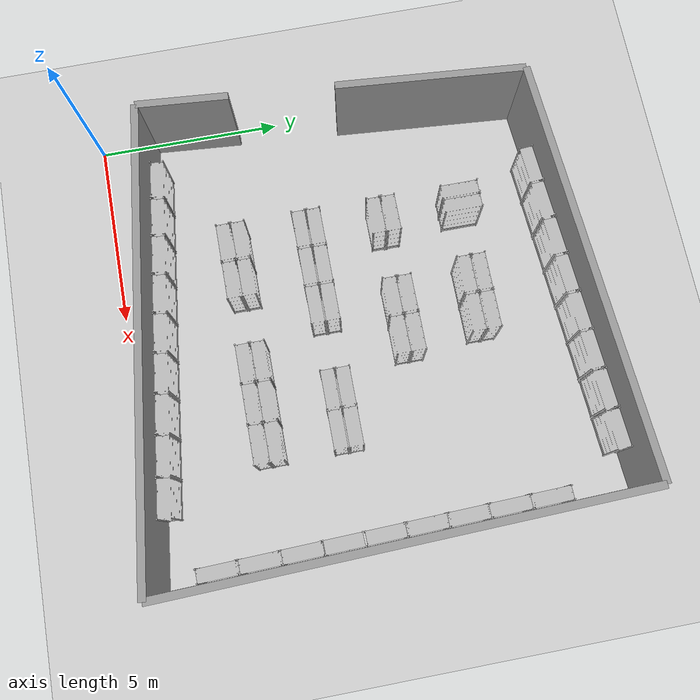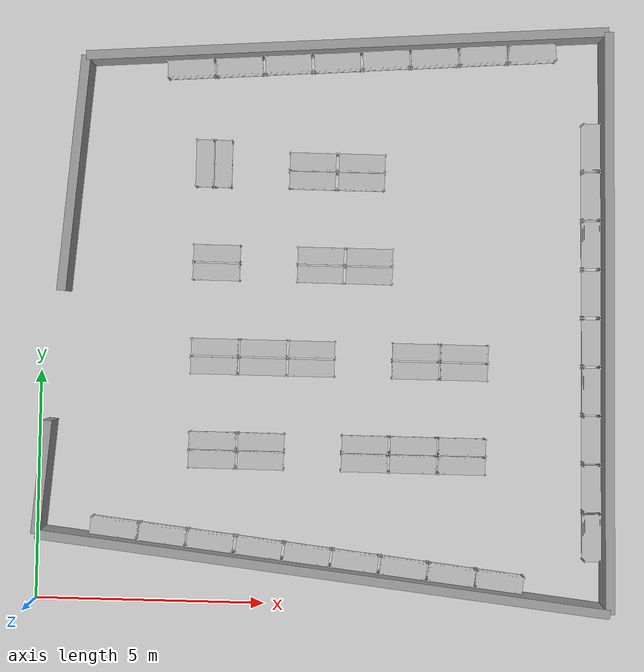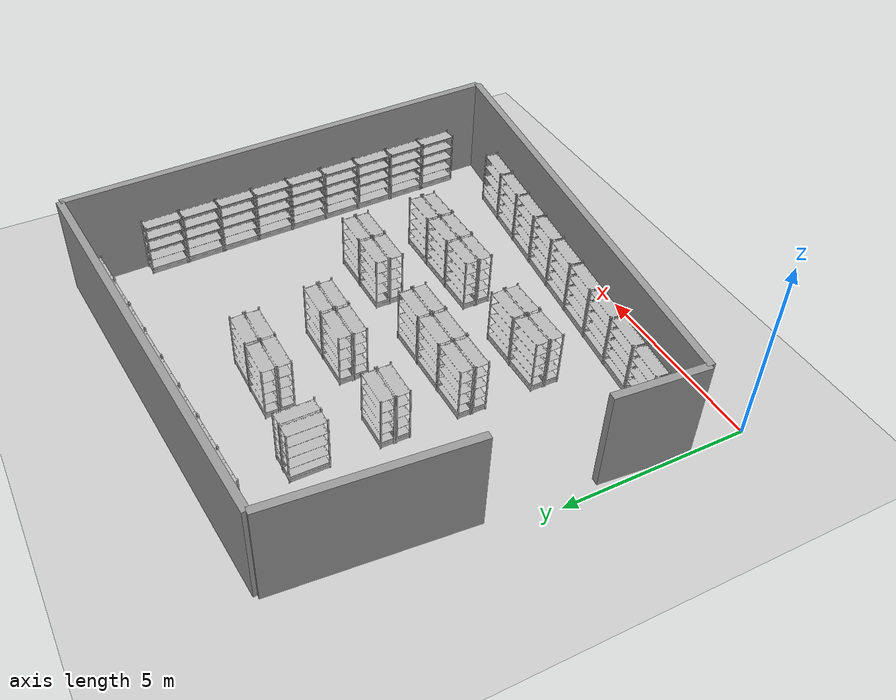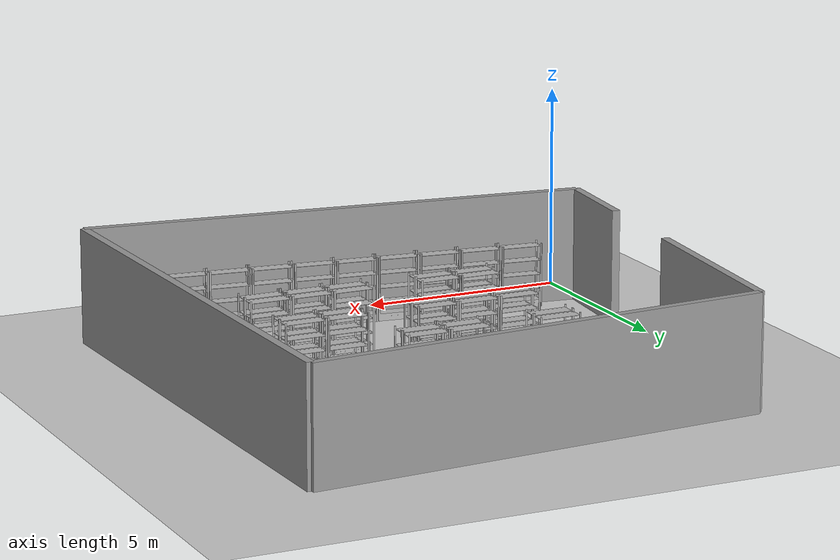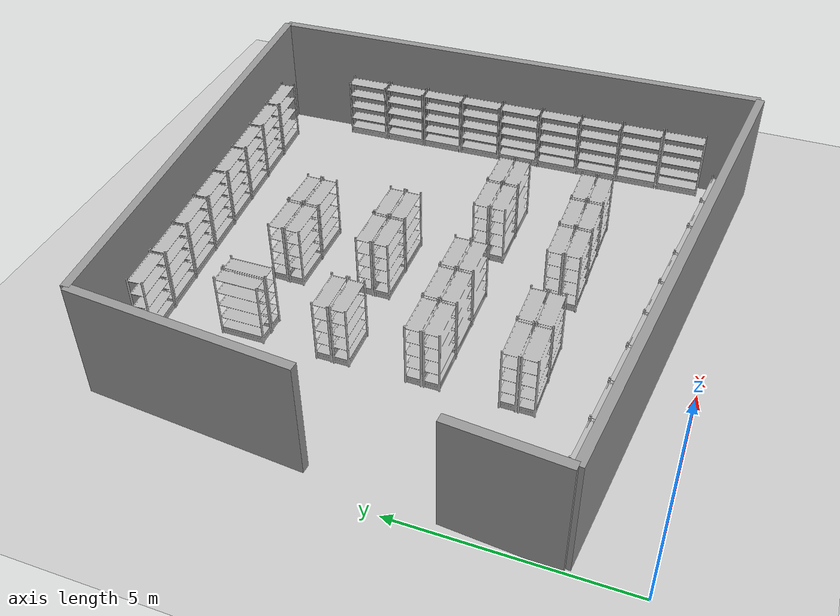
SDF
<sdf version="1.6">
  <world name="default">
    <light name="sun" type="directional">
      <cast_shadows>1</cast_shadows>
      <pose frame="">0 0 10 0 -0 0</pose>
      <diffuse>0.8 0.8 0.8 1</diffuse>
      <specular>0.2 0.2 0.2 1</specular>
      <attenuation>
        <range>1000</range>
        <constant>0.9</constant>
        <linear>0.01</linear>
        <quadratic>0.001</quadratic>
      </attenuation>
      <direction>-0.5 0.1 -0.9</direction>
    </light>
    <model name="ground_plane">
      <static>1</static>
      <link name="link">
        <collision name="collision">
          <geometry>
            <plane>
              <normal>0 0 1</normal>
              <size>100 100</size>
            </plane>
          </geometry>
          <surface>
            <contact>
              <collide_bitmask>65535</collide_bitmask>
              <ode />
            </contact>
            <friction>
              <ode>
                <mu>1000</mu>
                <mu2>1000</mu2>
              </ode>
              <torsional>
                <ode />
              </torsional>
            </friction>
            <bounce />
          </surface>
          <max_contacts>10</max_contacts>
        </collision>
        <visual name="visual">
          <cast_shadows>0</cast_shadows>
          <geometry>
            <plane>
              <normal>0 0 1</normal>
              <size>100 100</size>
            </plane>
          </geometry>
          <material>
            <script>
              <uri>file://media/materials/scripts/gazebo.material</uri>
              <name>Gazebo/Grey</name>
            </script>
          </material>
        </visual>
        <self_collide>0</self_collide>
        <enable_wind>0</enable_wind>
        <kinematic>0</kinematic>
      </link>
    </model>
    <gravity>0 0 -9.8</gravity>
    <magnetic_field>6e-06 2.3e-05 -4.2e-05</magnetic_field>
    <atmosphere type="adiabatic" />
    <physics name="default_physics" default="0" type="ode">
      <max_step_size>0.001</max_step_size>
      <real_time_factor>1</real_time_factor>
      <real_time_update_rate>1000</real_time_update_rate>
    </physics>
    <scene>
      <ambient>0.4 0.4 0.4 1</ambient>
      <background>0.7 0.7 0.7 1</background>
      <shadows>1</shadows>
    </scene>
    <audio>
      <device>default</device>
    </audio>
    <wind />
    <spherical_coordinates>
      <surface_model>EARTH_WGS84</surface_model>
      <latitude_deg>0</latitude_deg>
      <longitude_deg>0</longitude_deg>
      <elevation>0</elevation>
      <heading_deg>0</heading_deg>
    </spherical_coordinates>
    <gui fullscreen="0">
      <camera name="user_camera">
        <pose frame="">5.5458 -17.3868 19.7357 0 0.841797 1.67218</pose>
        <view_controller>orbit</view_controller>
        <projection_type>perspective</projection_type>
      </camera>
    </gui>
    <plugin name="ActorPosesPlugin" filename="libActorPosesPlugin.so" />
    <model name="store_shelf_moduled_0">
      <link name="link">
        <collision name="collision">
          <geometry>
            <mesh>
              <uri>model://store_shelf_moduled/meshes/store_shelf_moduled.dae</uri>
            </mesh>
          </geometry>
        </collision>
        <visual name="visual">
          <geometry>
            <mesh>
              <uri>model://store_shelf_moduled/meshes/store_shelf_moduled.dae</uri>
            </mesh>
          </geometry>
        </visual>
        <inertial>
          <mass>1000</mass>
          <inertia>
            <ixx>840083</ixx>
            <ixy>0</ixy>
            <ixz>0</ixz>
            <iyy>475500</iyy>
            <iyz>0</iyz>
            <izz>1.30208e+06</izz>
          </inertia>
        </inertial>
        <self_collide>0</self_collide>
        <enable_wind>0</enable_wind>
        <kinematic>0</kinematic>
      </link>
      <static>1</static>
      <pose frame="">1.161334 1.479356 0 0 0 -0.1135866</pose>
    </model>
    <model name="store_shelf_moduled_1">
      <link name="link">
        <collision name="collision">
          <geometry>
            <mesh>
              <uri>model://store_shelf_moduled/meshes/store_shelf_moduled.dae</uri>
            </mesh>
          </geometry>
        </collision>
        <visual name="visual">
          <geometry>
            <mesh>
              <uri>model://store_shelf_moduled/meshes/store_shelf_moduled.dae</uri>
            </mesh>
          </geometry>
        </visual>
        <inertial>
          <mass>1000</mass>
          <inertia>
            <ixx>840083</ixx>
            <ixy>0</ixy>
            <ixz>0</ixz>
            <iyy>475500</iyy>
            <iyz>0</iyz>
            <izz>1.30208e+06</izz>
          </inertia>
        </inertial>
        <self_collide>0</self_collide>
        <enable_wind>0</enable_wind>
        <kinematic>0</kinematic>
      </link>
      <static>1</static>
      <pose frame="">2.211334 1.359356 0 0 0 -0.1135866</pose>
    </model>
    <model name="store_shelf_moduled_2">
      <link name="link">
        <collision name="collision">
          <geometry>
            <mesh>
              <uri>model://store_shelf_moduled/meshes/store_shelf_moduled.dae</uri>
            </mesh>
          </geometry>
        </collision>
        <visual name="visual">
          <geometry>
            <mesh>
              <uri>model://store_shelf_moduled/meshes/store_shelf_moduled.dae</uri>
            </mesh>
          </geometry>
        </visual>
        <inertial>
          <mass>1000</mass>
          <inertia>
            <ixx>840083</ixx>
            <ixy>0</ixy>
            <ixz>0</ixz>
            <iyy>475500</iyy>
            <iyz>0</iyz>
            <izz>1.30208e+06</izz>
          </inertia>
        </inertial>
        <self_collide>0</self_collide>
        <enable_wind>0</enable_wind>
        <kinematic>0</kinematic>
      </link>
      <static>1</static>
      <pose frame="">3.261334 1.239356 0 0 0 -0.1135866</pose>
    </model>
    <model name="store_shelf_moduled_3">
      <link name="link">
        <collision name="collision">
          <geometry>
            <mesh>
              <uri>model://store_shelf_moduled/meshes/store_shelf_moduled.dae</uri>
            </mesh>
          </geometry>
        </collision>
        <visual name="visual">
          <geometry>
            <mesh>
              <uri>model://store_shelf_moduled/meshes/store_shelf_moduled.dae</uri>
            </mesh>
          </geometry>
        </visual>
        <inertial>
          <mass>1000</mass>
          <inertia>
            <ixx>840083</ixx>
            <ixy>0</ixy>
            <ixz>0</ixz>
            <iyy>475500</iyy>
            <iyz>0</iyz>
            <izz>1.30208e+06</izz>
          </inertia>
        </inertial>
        <self_collide>0</self_collide>
        <enable_wind>0</enable_wind>
        <kinematic>0</kinematic>
      </link>
      <static>1</static>
      <pose frame="">4.321334 1.119356 0 0 0 -0.1135866</pose>
    </model>
    <model name="store_shelf_moduled_4">
      <link name="link">
        <collision name="collision">
          <geometry>
            <mesh>
              <uri>model://store_shelf_moduled/meshes/store_shelf_moduled.dae</uri>
            </mesh>
          </geometry>
        </collision>
        <visual name="visual">
          <geometry>
            <mesh>
              <uri>model://store_shelf_moduled/meshes/store_shelf_moduled.dae</uri>
            </mesh>
          </geometry>
        </visual>
        <inertial>
          <mass>1000</mass>
          <inertia>
            <ixx>840083</ixx>
            <ixy>0</ixy>
            <ixz>0</ixz>
            <iyy>475500</iyy>
            <iyz>0</iyz>
            <izz>1.30208e+06</izz>
          </inertia>
        </inertial>
        <self_collide>0</self_collide>
        <enable_wind>0</enable_wind>
        <kinematic>0</kinematic>
      </link>
      <static>1</static>
      <pose frame="">5.371334 0.9993556 0 0 0 -0.1135866</pose>
    </model>
    <model name="store_shelf_moduled_5">
      <link name="link">
        <collision name="collision">
          <geometry>
            <mesh>
              <uri>model://store_shelf_moduled/meshes/store_shelf_moduled.dae</uri>
            </mesh>
          </geometry>
        </collision>
        <visual name="visual">
          <geometry>
            <mesh>
              <uri>model://store_shelf_moduled/meshes/store_shelf_moduled.dae</uri>
            </mesh>
          </geometry>
        </visual>
        <inertial>
          <mass>1000</mass>
          <inertia>
            <ixx>840083</ixx>
            <ixy>0</ixy>
            <ixz>0</ixz>
            <iyy>475500</iyy>
            <iyz>0</iyz>
            <izz>1.30208e+06</izz>
          </inertia>
        </inertial>
        <self_collide>0</self_collide>
        <enable_wind>0</enable_wind>
        <kinematic>0</kinematic>
      </link>
      <static>1</static>
      <pose frame="">6.421334 0.8793556 0 0 0 -0.1135866</pose>
    </model>
    <model name="store_shelf_moduled_6">
      <link name="link">
        <collision name="collision">
          <geometry>
            <mesh>
              <uri>model://store_shelf_moduled/meshes/store_shelf_moduled.dae</uri>
            </mesh>
          </geometry>
        </collision>
        <visual name="visual">
          <geometry>
            <mesh>
              <uri>model://store_shelf_moduled/meshes/store_shelf_moduled.dae</uri>
            </mesh>
          </geometry>
        </visual>
        <inertial>
          <mass>1000</mass>
          <inertia>
            <ixx>840083</ixx>
            <ixy>0</ixy>
            <ixz>0</ixz>
            <iyy>475500</iyy>
            <iyz>0</iyz>
            <izz>1.30208e+06</izz>
          </inertia>
        </inertial>
        <self_collide>0</self_collide>
        <enable_wind>0</enable_wind>
        <kinematic>0</kinematic>
      </link>
      <static>1</static>
      <pose frame="">7.481334 0.7593556 0 0 0 -0.1135866</pose>
    </model>
    <model name="store_shelf_moduled_7">
      <link name="link">
        <collision name="collision">
          <geometry>
            <mesh>
              <uri>model://store_shelf_moduled/meshes/store_shelf_moduled.dae</uri>
            </mesh>
          </geometry>
        </collision>
        <visual name="visual">
          <geometry>
            <mesh>
              <uri>model://store_shelf_moduled/meshes/store_shelf_moduled.dae</uri>
            </mesh>
          </geometry>
        </visual>
        <inertial>
          <mass>1000</mass>
          <inertia>
            <ixx>840083</ixx>
            <ixy>0</ixy>
            <ixz>0</ixz>
            <iyy>475500</iyy>
            <iyz>0</iyz>
            <izz>1.30208e+06</izz>
          </inertia>
        </inertial>
        <self_collide>0</self_collide>
        <enable_wind>0</enable_wind>
        <kinematic>0</kinematic>
      </link>
      <static>1</static>
      <pose frame="">8.531334 0.6393556 0 0 0 -0.1135866</pose>
    </model>
    <model name="store_shelf_moduled_8">
      <link name="link">
        <collision name="collision">
          <geometry>
            <mesh>
              <uri>model://store_shelf_moduled/meshes/store_shelf_moduled.dae</uri>
            </mesh>
          </geometry>
        </collision>
        <visual name="visual">
          <geometry>
            <mesh>
              <uri>model://store_shelf_moduled/meshes/store_shelf_moduled.dae</uri>
            </mesh>
          </geometry>
        </visual>
        <inertial>
          <mass>1000</mass>
          <inertia>
            <ixx>840083</ixx>
            <ixy>0</ixy>
            <ixz>0</ixz>
            <iyy>475500</iyy>
            <iyz>0</iyz>
            <izz>1.30208e+06</izz>
          </inertia>
        </inertial>
        <self_collide>0</self_collide>
        <enable_wind>0</enable_wind>
        <kinematic>0</kinematic>
      </link>
      <static>1</static>
      <pose frame="">9.581334 0.5193556 0 0 0 -0.1135866</pose>
    </model>
    <model name="store_shelf_moduled_9">
      <link name="link">
        <collision name="collision">
          <geometry>
            <mesh>
              <uri>model://store_shelf_moduled/meshes/store_shelf_moduled.dae</uri>
            </mesh>
          </geometry>
        </collision>
        <visual name="visual">
          <geometry>
            <mesh>
              <uri>model://store_shelf_moduled/meshes/store_shelf_moduled.dae</uri>
            </mesh>
          </geometry>
        </visual>
        <inertial>
          <mass>1000</mass>
          <inertia>
            <ixx>840083</ixx>
            <ixy>0</ixy>
            <ixz>0</ixz>
            <iyy>475500</iyy>
            <iyz>0</iyz>
            <izz>1.30208e+06</izz>
          </inertia>
        </inertial>
        <self_collide>0</self_collide>
        <enable_wind>0</enable_wind>
        <kinematic>0</kinematic>
      </link>
      <static>1</static>
      <pose frame="">12.33004 1.147197 0 0 0 1.598834</pose>
    </model>
    <model name="store_shelf_moduled_10">
      <link name="link">
        <collision name="collision">
          <geometry>
            <mesh>
              <uri>model://store_shelf_moduled/meshes/store_shelf_moduled.dae</uri>
            </mesh>
          </geometry>
        </collision>
        <visual name="visual">
          <geometry>
            <mesh>
              <uri>model://store_shelf_moduled/meshes/store_shelf_moduled.dae</uri>
            </mesh>
          </geometry>
        </visual>
        <inertial>
          <mass>1000</mass>
          <inertia>
            <ixx>840083</ixx>
            <ixy>0</ixy>
            <ixz>0</ixz>
            <iyy>475500</iyy>
            <iyz>0</iyz>
            <izz>1.30208e+06</izz>
          </inertia>
        </inertial>
        <self_collide>0</self_collide>
        <enable_wind>0</enable_wind>
        <kinematic>0</kinematic>
      </link>
      <static>1</static>
      <pose frame="">12.30004 2.207197 0 0 0 1.598834</pose>
    </model>
    <model name="store_shelf_moduled_11">
      <link name="link">
        <collision name="collision">
          <geometry>
            <mesh>
              <uri>model://store_shelf_moduled/meshes/store_shelf_moduled.dae</uri>
            </mesh>
          </geometry>
        </collision>
        <visual name="visual">
          <geometry>
            <mesh>
              <uri>model://store_shelf_moduled/meshes/store_shelf_moduled.dae</uri>
            </mesh>
          </geometry>
        </visual>
        <inertial>
          <mass>1000</mass>
          <inertia>
            <ixx>840083</ixx>
            <ixy>0</ixy>
            <ixz>0</ixz>
            <iyy>475500</iyy>
            <iyz>0</iyz>
            <izz>1.30208e+06</izz>
          </inertia>
        </inertial>
        <self_collide>0</self_collide>
        <enable_wind>0</enable_wind>
        <kinematic>0</kinematic>
      </link>
      <static>1</static>
      <pose frame="">12.27004 3.267197 0 0 0 1.598834</pose>
    </model>
    <model name="store_shelf_moduled_12">
      <link name="link">
        <collision name="collision">
          <geometry>
            <mesh>
              <uri>model://store_shelf_moduled/meshes/store_shelf_moduled.dae</uri>
            </mesh>
          </geometry>
        </collision>
        <visual name="visual">
          <geometry>
            <mesh>
              <uri>model://store_shelf_moduled/meshes/store_shelf_moduled.dae</uri>
            </mesh>
          </geometry>
        </visual>
        <inertial>
          <mass>1000</mass>
          <inertia>
            <ixx>840083</ixx>
            <ixy>0</ixy>
            <ixz>0</ixz>
            <iyy>475500</iyy>
            <iyz>0</iyz>
            <izz>1.30208e+06</izz>
          </inertia>
        </inertial>
        <self_collide>0</self_collide>
        <enable_wind>0</enable_wind>
        <kinematic>0</kinematic>
      </link>
      <static>1</static>
      <pose frame="">12.24004 4.327197 0 0 0 1.598834</pose>
    </model>
    <model name="store_shelf_moduled_13">
      <link name="link">
        <collision name="collision">
          <geometry>
            <mesh>
              <uri>model://store_shelf_moduled/meshes/store_shelf_moduled.dae</uri>
            </mesh>
          </geometry>
        </collision>
        <visual name="visual">
          <geometry>
            <mesh>
              <uri>model://store_shelf_moduled/meshes/store_shelf_moduled.dae</uri>
            </mesh>
          </geometry>
        </visual>
        <inertial>
          <mass>1000</mass>
          <inertia>
            <ixx>840083</ixx>
            <ixy>0</ixy>
            <ixz>0</ixz>
            <iyy>475500</iyy>
            <iyz>0</iyz>
            <izz>1.30208e+06</izz>
          </inertia>
        </inertial>
        <self_collide>0</self_collide>
        <enable_wind>0</enable_wind>
        <kinematic>0</kinematic>
      </link>
      <static>1</static>
      <pose frame="">12.21004 5.387197 0 0 0 1.598834</pose>
    </model>
    <model name="store_shelf_moduled_14">
      <link name="link">
        <collision name="collision">
          <geometry>
            <mesh>
              <uri>model://store_shelf_moduled/meshes/store_shelf_moduled.dae</uri>
            </mesh>
          </geometry>
        </collision>
        <visual name="visual">
          <geometry>
            <mesh>
              <uri>model://store_shelf_moduled/meshes/store_shelf_moduled.dae</uri>
            </mesh>
          </geometry>
        </visual>
        <inertial>
          <mass>1000</mass>
          <inertia>
            <ixx>840083</ixx>
            <ixy>0</ixy>
            <ixz>0</ixz>
            <iyy>475500</iyy>
            <iyz>0</iyz>
            <izz>1.30208e+06</izz>
          </inertia>
        </inertial>
        <self_collide>0</self_collide>
        <enable_wind>0</enable_wind>
        <kinematic>0</kinematic>
      </link>
      <static>1</static>
      <pose frame="">12.18004 6.447196 0 0 0 1.598834</pose>
    </model>
    <model name="store_shelf_moduled_15">
      <link name="link">
        <collision name="collision">
          <geometry>
            <mesh>
              <uri>model://store_shelf_moduled/meshes/store_shelf_moduled.dae</uri>
            </mesh>
          </geometry>
        </collision>
        <visual name="visual">
          <geometry>
            <mesh>
              <uri>model://store_shelf_moduled/meshes/store_shelf_moduled.dae</uri>
            </mesh>
          </geometry>
        </visual>
        <inertial>
          <mass>1000</mass>
          <inertia>
            <ixx>840083</ixx>
            <ixy>0</ixy>
            <ixz>0</ixz>
            <iyy>475500</iyy>
            <iyz>0</iyz>
            <izz>1.30208e+06</izz>
          </inertia>
        </inertial>
        <self_collide>0</self_collide>
        <enable_wind>0</enable_wind>
        <kinematic>0</kinematic>
      </link>
      <static>1</static>
      <pose frame="">12.15004 7.507196 0 0 0 1.598834</pose>
    </model>
    <model name="store_shelf_moduled_16">
      <link name="link">
        <collision name="collision">
          <geometry>
            <mesh>
              <uri>model://store_shelf_moduled/meshes/store_shelf_moduled.dae</uri>
            </mesh>
          </geometry>
        </collision>
        <visual name="visual">
          <geometry>
            <mesh>
              <uri>model://store_shelf_moduled/meshes/store_shelf_moduled.dae</uri>
            </mesh>
          </geometry>
        </visual>
        <inertial>
          <mass>1000</mass>
          <inertia>
            <ixx>840083</ixx>
            <ixy>0</ixy>
            <ixz>0</ixz>
            <iyy>475500</iyy>
            <iyz>0</iyz>
            <izz>1.30208e+06</izz>
          </inertia>
        </inertial>
        <self_collide>0</self_collide>
        <enable_wind>0</enable_wind>
        <kinematic>0</kinematic>
      </link>
      <static>1</static>
      <pose frame="">12.12004 8.567197 0 0 0 1.598834</pose>
    </model>
    <model name="store_shelf_moduled_17">
      <link name="link">
        <collision name="collision">
          <geometry>
            <mesh>
              <uri>model://store_shelf_moduled/meshes/store_shelf_moduled.dae</uri>
            </mesh>
          </geometry>
        </collision>
        <visual name="visual">
          <geometry>
            <mesh>
              <uri>model://store_shelf_moduled/meshes/store_shelf_moduled.dae</uri>
            </mesh>
          </geometry>
        </visual>
        <inertial>
          <mass>1000</mass>
          <inertia>
            <ixx>840083</ixx>
            <ixy>0</ixy>
            <ixz>0</ixz>
            <iyy>475500</iyy>
            <iyz>0</iyz>
            <izz>1.30208e+06</izz>
          </inertia>
        </inertial>
        <self_collide>0</self_collide>
        <enable_wind>0</enable_wind>
        <kinematic>0</kinematic>
      </link>
      <static>1</static>
      <pose frame="">12.09004 9.627196 0 0 0 1.598834</pose>
    </model>
    <model name="store_shelf_moduled_18">
      <link name="link">
        <collision name="collision">
          <geometry>
            <mesh>
              <uri>model://store_shelf_moduled/meshes/store_shelf_moduled.dae</uri>
            </mesh>
          </geometry>
        </collision>
        <visual name="visual">
          <geometry>
            <mesh>
              <uri>model://store_shelf_moduled/meshes/store_shelf_moduled.dae</uri>
            </mesh>
          </geometry>
        </visual>
        <inertial>
          <mass>1000</mass>
          <inertia>
            <ixx>840083</ixx>
            <ixy>0</ixy>
            <ixz>0</ixz>
            <iyy>475500</iyy>
            <iyz>0</iyz>
            <izz>1.30208e+06</izz>
          </inertia>
        </inertial>
        <self_collide>0</self_collide>
        <enable_wind>0</enable_wind>
        <kinematic>0</kinematic>
      </link>
      <static>1</static>
      <pose frame="">11.05705 12.40025 0 0 0 -3.071048</pose>
    </model>
    <model name="store_shelf_moduled_19">
      <link name="link">
        <collision name="collision">
          <geometry>
            <mesh>
              <uri>model://store_shelf_moduled/meshes/store_shelf_moduled.dae</uri>
            </mesh>
          </geometry>
        </collision>
        <visual name="visual">
          <geometry>
            <mesh>
              <uri>model://store_shelf_moduled/meshes/store_shelf_moduled.dae</uri>
            </mesh>
          </geometry>
        </visual>
        <inertial>
          <mass>1000</mass>
          <inertia>
            <ixx>840083</ixx>
            <ixy>0</ixy>
            <ixz>0</ixz>
            <iyy>475500</iyy>
            <iyz>0</iyz>
            <izz>1.30208e+06</izz>
          </inertia>
        </inertial>
        <self_collide>0</self_collide>
        <enable_wind>0</enable_wind>
        <kinematic>0</kinematic>
      </link>
      <static>1</static>
      <pose frame="">9.997048 12.33025 0 0 0 -3.071048</pose>
    </model>
    <model name="store_shelf_moduled_20">
      <link name="link">
        <collision name="collision">
          <geometry>
            <mesh>
              <uri>model://store_shelf_moduled/meshes/store_shelf_moduled.dae</uri>
            </mesh>
          </geometry>
        </collision>
        <visual name="visual">
          <geometry>
            <mesh>
              <uri>model://store_shelf_moduled/meshes/store_shelf_moduled.dae</uri>
            </mesh>
          </geometry>
        </visual>
        <inertial>
          <mass>1000</mass>
          <inertia>
            <ixx>840083</ixx>
            <ixy>0</ixy>
            <ixz>0</ixz>
            <iyy>475500</iyy>
            <iyz>0</iyz>
            <izz>1.30208e+06</izz>
          </inertia>
        </inertial>
        <self_collide>0</self_collide>
        <enable_wind>0</enable_wind>
        <kinematic>0</kinematic>
      </link>
      <static>1</static>
      <pose frame="">8.937048 12.25025 0 0 0 -3.071048</pose>
    </model>
    <model name="store_shelf_moduled_21">
      <link name="link">
        <collision name="collision">
          <geometry>
            <mesh>
              <uri>model://store_shelf_moduled/meshes/store_shelf_moduled.dae</uri>
            </mesh>
          </geometry>
        </collision>
        <visual name="visual">
          <geometry>
            <mesh>
              <uri>model://store_shelf_moduled/meshes/store_shelf_moduled.dae</uri>
            </mesh>
          </geometry>
        </visual>
        <inertial>
          <mass>1000</mass>
          <inertia>
            <ixx>840083</ixx>
            <ixy>0</ixy>
            <ixz>0</ixz>
            <iyy>475500</iyy>
            <iyz>0</iyz>
            <izz>1.30208e+06</izz>
          </inertia>
        </inertial>
        <self_collide>0</self_collide>
        <enable_wind>0</enable_wind>
        <kinematic>0</kinematic>
      </link>
      <static>1</static>
      <pose frame="">7.887048 12.18025 0 0 0 -3.071048</pose>
    </model>
    <model name="store_shelf_moduled_22">
      <link name="link">
        <collision name="collision">
          <geometry>
            <mesh>
              <uri>model://store_shelf_moduled/meshes/store_shelf_moduled.dae</uri>
            </mesh>
          </geometry>
        </collision>
        <visual name="visual">
          <geometry>
            <mesh>
              <uri>model://store_shelf_moduled/meshes/store_shelf_moduled.dae</uri>
            </mesh>
          </geometry>
        </visual>
        <inertial>
          <mass>1000</mass>
          <inertia>
            <ixx>840083</ixx>
            <ixy>0</ixy>
            <ixz>0</ixz>
            <iyy>475500</iyy>
            <iyz>0</iyz>
            <izz>1.30208e+06</izz>
          </inertia>
        </inertial>
        <self_collide>0</self_collide>
        <enable_wind>0</enable_wind>
        <kinematic>0</kinematic>
      </link>
      <static>1</static>
      <pose frame="">6.827048 12.10025 0 0 0 -3.071048</pose>
    </model>
    <model name="store_shelf_moduled_23">
      <link name="link">
        <collision name="collision">
          <geometry>
            <mesh>
              <uri>model://store_shelf_moduled/meshes/store_shelf_moduled.dae</uri>
            </mesh>
          </geometry>
        </collision>
        <visual name="visual">
          <geometry>
            <mesh>
              <uri>model://store_shelf_moduled/meshes/store_shelf_moduled.dae</uri>
            </mesh>
          </geometry>
        </visual>
        <inertial>
          <mass>1000</mass>
          <inertia>
            <ixx>840083</ixx>
            <ixy>0</ixy>
            <ixz>0</ixz>
            <iyy>475500</iyy>
            <iyz>0</iyz>
            <izz>1.30208e+06</izz>
          </inertia>
        </inertial>
        <self_collide>0</self_collide>
        <enable_wind>0</enable_wind>
        <kinematic>0</kinematic>
      </link>
      <static>1</static>
      <pose frame="">5.767048 12.03025 0 0 0 -3.071048</pose>
    </model>
    <model name="store_shelf_moduled_24">
      <link name="link">
        <collision name="collision">
          <geometry>
            <mesh>
              <uri>model://store_shelf_moduled/meshes/store_shelf_moduled.dae</uri>
            </mesh>
          </geometry>
        </collision>
        <visual name="visual">
          <geometry>
            <mesh>
              <uri>model://store_shelf_moduled/meshes/store_shelf_moduled.dae</uri>
            </mesh>
          </geometry>
        </visual>
        <inertial>
          <mass>1000</mass>
          <inertia>
            <ixx>840083</ixx>
            <ixy>0</ixy>
            <ixz>0</ixz>
            <iyy>475500</iyy>
            <iyz>0</iyz>
            <izz>1.30208e+06</izz>
          </inertia>
        </inertial>
        <self_collide>0</self_collide>
        <enable_wind>0</enable_wind>
        <kinematic>0</kinematic>
      </link>
      <static>1</static>
      <pose frame="">4.707048 11.95025 0 0 0 -3.071048</pose>
    </model>
    <model name="store_shelf_moduled_25">
      <link name="link">
        <collision name="collision">
          <geometry>
            <mesh>
              <uri>model://store_shelf_moduled/meshes/store_shelf_moduled.dae</uri>
            </mesh>
          </geometry>
        </collision>
        <visual name="visual">
          <geometry>
            <mesh>
              <uri>model://store_shelf_moduled/meshes/store_shelf_moduled.dae</uri>
            </mesh>
          </geometry>
        </visual>
        <inertial>
          <mass>1000</mass>
          <inertia>
            <ixx>840083</ixx>
            <ixy>0</ixy>
            <ixz>0</ixz>
            <iyy>475500</iyy>
            <iyz>0</iyz>
            <izz>1.30208e+06</izz>
          </inertia>
        </inertial>
        <self_collide>0</self_collide>
        <enable_wind>0</enable_wind>
        <kinematic>0</kinematic>
      </link>
      <static>1</static>
      <pose frame="">3.657049 11.88025 0 0 0 -3.071048</pose>
    </model>
    <model name="store_shelf_moduled_26">
      <link name="link">
        <collision name="collision">
          <geometry>
            <mesh>
              <uri>model://store_shelf_moduled/meshes/store_shelf_moduled.dae</uri>
            </mesh>
          </geometry>
        </collision>
        <visual name="visual">
          <geometry>
            <mesh>
              <uri>model://store_shelf_moduled/meshes/store_shelf_moduled.dae</uri>
            </mesh>
          </geometry>
        </visual>
        <inertial>
          <mass>1000</mass>
          <inertia>
            <ixx>840083</ixx>
            <ixy>0</ixy>
            <ixz>0</ixz>
            <iyy>475500</iyy>
            <iyz>0</iyz>
            <izz>1.30208e+06</izz>
          </inertia>
        </inertial>
        <self_collide>0</self_collide>
        <enable_wind>0</enable_wind>
        <kinematic>0</kinematic>
      </link>
      <static>1</static>
      <pose frame="">3.27 3.36 0 0 0 0</pose>
    </model>
    <model name="store_shelf_moduled_27">
      <link name="link">
        <collision name="collision">
          <geometry>
            <mesh>
              <uri>model://store_shelf_moduled/meshes/store_shelf_moduled.dae</uri>
            </mesh>
          </geometry>
        </collision>
        <visual name="visual">
          <geometry>
            <mesh>
              <uri>model://store_shelf_moduled/meshes/store_shelf_moduled.dae</uri>
            </mesh>
          </geometry>
        </visual>
        <inertial>
          <mass>1000</mass>
          <inertia>
            <ixx>840083</ixx>
            <ixy>0</ixy>
            <ixz>0</ixz>
            <iyy>475500</iyy>
            <iyz>0</iyz>
            <izz>1.30208e+06</izz>
          </inertia>
        </inertial>
        <self_collide>0</self_collide>
        <enable_wind>0</enable_wind>
        <kinematic>0</kinematic>
      </link>
      <static>1</static>
      <pose frame="">4.33 3.36 0 0 0 -3.141593</pose>
    </model>
    <model name="store_shelf_moduled_28">
      <link name="link">
        <collision name="collision">
          <geometry>
            <mesh>
              <uri>model://store_shelf_moduled/meshes/store_shelf_moduled.dae</uri>
            </mesh>
          </geometry>
        </collision>
        <visual name="visual">
          <geometry>
            <mesh>
              <uri>model://store_shelf_moduled/meshes/store_shelf_moduled.dae</uri>
            </mesh>
          </geometry>
        </visual>
        <inertial>
          <mass>1000</mass>
          <inertia>
            <ixx>840083</ixx>
            <ixy>0</ixy>
            <ixz>0</ixz>
            <iyy>475500</iyy>
            <iyz>0</iyz>
            <izz>1.30208e+06</izz>
          </inertia>
        </inertial>
        <self_collide>0</self_collide>
        <enable_wind>0</enable_wind>
        <kinematic>0</kinematic>
      </link>
      <static>1</static>
      <pose frame="">4.33 3.36 0 0 0 0</pose>
    </model>
    <model name="store_shelf_moduled_29">
      <link name="link">
        <collision name="collision">
          <geometry>
            <mesh>
              <uri>model://store_shelf_moduled/meshes/store_shelf_moduled.dae</uri>
            </mesh>
          </geometry>
        </collision>
        <visual name="visual">
          <geometry>
            <mesh>
              <uri>model://store_shelf_moduled/meshes/store_shelf_moduled.dae</uri>
            </mesh>
          </geometry>
        </visual>
        <inertial>
          <mass>1000</mass>
          <inertia>
            <ixx>840083</ixx>
            <ixy>0</ixy>
            <ixz>0</ixz>
            <iyy>475500</iyy>
            <iyz>0</iyz>
            <izz>1.30208e+06</izz>
          </inertia>
        </inertial>
        <self_collide>0</self_collide>
        <enable_wind>0</enable_wind>
        <kinematic>0</kinematic>
      </link>
      <static>1</static>
      <pose frame="">5.39 3.36 0 0 0 -3.141593</pose>
    </model>
    <model name="store_shelf_moduled_30">
      <link name="link">
        <collision name="collision">
          <geometry>
            <mesh>
              <uri>model://store_shelf_moduled/meshes/store_shelf_moduled.dae</uri>
            </mesh>
          </geometry>
        </collision>
        <visual name="visual">
          <geometry>
            <mesh>
              <uri>model://store_shelf_moduled/meshes/store_shelf_moduled.dae</uri>
            </mesh>
          </geometry>
        </visual>
        <inertial>
          <mass>1000</mass>
          <inertia>
            <ixx>840083</ixx>
            <ixy>0</ixy>
            <ixz>0</ixz>
            <iyy>475500</iyy>
            <iyz>0</iyz>
            <izz>1.30208e+06</izz>
          </inertia>
        </inertial>
        <self_collide>0</self_collide>
        <enable_wind>0</enable_wind>
        <kinematic>0</kinematic>
      </link>
      <static>1</static>
      <pose frame="">3.27 5.4 0 0 0 0</pose>
    </model>
    <model name="store_shelf_moduled_31">
      <link name="link">
        <collision name="collision">
          <geometry>
            <mesh>
              <uri>model://store_shelf_moduled/meshes/store_shelf_moduled.dae</uri>
            </mesh>
          </geometry>
        </collision>
        <visual name="visual">
          <geometry>
            <mesh>
              <uri>model://store_shelf_moduled/meshes/store_shelf_moduled.dae</uri>
            </mesh>
          </geometry>
        </visual>
        <inertial>
          <mass>1000</mass>
          <inertia>
            <ixx>840083</ixx>
            <ixy>0</ixy>
            <ixz>0</ixz>
            <iyy>475500</iyy>
            <iyz>0</iyz>
            <izz>1.30208e+06</izz>
          </inertia>
        </inertial>
        <self_collide>0</self_collide>
        <enable_wind>0</enable_wind>
        <kinematic>0</kinematic>
      </link>
      <static>1</static>
      <pose frame="">4.33 5.4 0 0 0 -3.141593</pose>
    </model>
    <model name="store_shelf_moduled_32">
      <link name="link">
        <collision name="collision">
          <geometry>
            <mesh>
              <uri>model://store_shelf_moduled/meshes/store_shelf_moduled.dae</uri>
            </mesh>
          </geometry>
        </collision>
        <visual name="visual">
          <geometry>
            <mesh>
              <uri>model://store_shelf_moduled/meshes/store_shelf_moduled.dae</uri>
            </mesh>
          </geometry>
        </visual>
        <inertial>
          <mass>1000</mass>
          <inertia>
            <ixx>840083</ixx>
            <ixy>0</ixy>
            <ixz>0</ixz>
            <iyy>475500</iyy>
            <iyz>0</iyz>
            <izz>1.30208e+06</izz>
          </inertia>
        </inertial>
        <self_collide>0</self_collide>
        <enable_wind>0</enable_wind>
        <kinematic>0</kinematic>
      </link>
      <static>1</static>
      <pose frame="">4.33 5.4 0 0 0 0</pose>
    </model>
    <model name="store_shelf_moduled_33">
      <link name="link">
        <collision name="collision">
          <geometry>
            <mesh>
              <uri>model://store_shelf_moduled/meshes/store_shelf_moduled.dae</uri>
            </mesh>
          </geometry>
        </collision>
        <visual name="visual">
          <geometry>
            <mesh>
              <uri>model://store_shelf_moduled/meshes/store_shelf_moduled.dae</uri>
            </mesh>
          </geometry>
        </visual>
        <inertial>
          <mass>1000</mass>
          <inertia>
            <ixx>840083</ixx>
            <ixy>0</ixy>
            <ixz>0</ixz>
            <iyy>475500</iyy>
            <iyz>0</iyz>
            <izz>1.30208e+06</izz>
          </inertia>
        </inertial>
        <self_collide>0</self_collide>
        <enable_wind>0</enable_wind>
        <kinematic>0</kinematic>
      </link>
      <static>1</static>
      <pose frame="">5.39 5.4 0 0 0 -3.141593</pose>
    </model>
    <model name="store_shelf_moduled_34">
      <link name="link">
        <collision name="collision">
          <geometry>
            <mesh>
              <uri>model://store_shelf_moduled/meshes/store_shelf_moduled.dae</uri>
            </mesh>
          </geometry>
        </collision>
        <visual name="visual">
          <geometry>
            <mesh>
              <uri>model://store_shelf_moduled/meshes/store_shelf_moduled.dae</uri>
            </mesh>
          </geometry>
        </visual>
        <inertial>
          <mass>1000</mass>
          <inertia>
            <ixx>840083</ixx>
            <ixy>0</ixy>
            <ixz>0</ixz>
            <iyy>475500</iyy>
            <iyz>0</iyz>
            <izz>1.30208e+06</izz>
          </inertia>
        </inertial>
        <self_collide>0</self_collide>
        <enable_wind>0</enable_wind>
        <kinematic>0</kinematic>
      </link>
      <static>1</static>
      <pose frame="">5.39 5.4 0 0 0 0</pose>
    </model>
    <model name="store_shelf_moduled_35">
      <link name="link">
        <collision name="collision">
          <geometry>
            <mesh>
              <uri>model://store_shelf_moduled/meshes/store_shelf_moduled.dae</uri>
            </mesh>
          </geometry>
        </collision>
        <visual name="visual">
          <geometry>
            <mesh>
              <uri>model://store_shelf_moduled/meshes/store_shelf_moduled.dae</uri>
            </mesh>
          </geometry>
        </visual>
        <inertial>
          <mass>1000</mass>
          <inertia>
            <ixx>840083</ixx>
            <ixy>0</ixy>
            <ixz>0</ixz>
            <iyy>475500</iyy>
            <iyz>0</iyz>
            <izz>1.30208e+06</izz>
          </inertia>
        </inertial>
        <self_collide>0</self_collide>
        <enable_wind>0</enable_wind>
        <kinematic>0</kinematic>
      </link>
      <static>1</static>
      <pose frame="">6.45 5.4 0 0 0 -3.141593</pose>
    </model>
    <model name="store_shelf_moduled_36">
      <link name="link">
        <collision name="collision">
          <geometry>
            <mesh>
              <uri>model://store_shelf_moduled/meshes/store_shelf_moduled.dae</uri>
            </mesh>
          </geometry>
        </collision>
        <visual name="visual">
          <geometry>
            <mesh>
              <uri>model://store_shelf_moduled/meshes/store_shelf_moduled.dae</uri>
            </mesh>
          </geometry>
        </visual>
        <inertial>
          <mass>1000</mass>
          <inertia>
            <ixx>840083</ixx>
            <ixy>0</ixy>
            <ixz>0</ixz>
            <iyy>475500</iyy>
            <iyz>0</iyz>
            <izz>1.30208e+06</izz>
          </inertia>
        </inertial>
        <self_collide>0</self_collide>
        <enable_wind>0</enable_wind>
        <kinematic>0</kinematic>
      </link>
      <static>1</static>
      <pose frame="">5.53 7.44 0 0 0 0</pose>
    </model>
    <model name="store_shelf_moduled_37">
      <link name="link">
        <collision name="collision">
          <geometry>
            <mesh>
              <uri>model://store_shelf_moduled/meshes/store_shelf_moduled.dae</uri>
            </mesh>
          </geometry>
        </collision>
        <visual name="visual">
          <geometry>
            <mesh>
              <uri>model://store_shelf_moduled/meshes/store_shelf_moduled.dae</uri>
            </mesh>
          </geometry>
        </visual>
        <inertial>
          <mass>1000</mass>
          <inertia>
            <ixx>840083</ixx>
            <ixy>0</ixy>
            <ixz>0</ixz>
            <iyy>475500</iyy>
            <iyz>0</iyz>
            <izz>1.30208e+06</izz>
          </inertia>
        </inertial>
        <self_collide>0</self_collide>
        <enable_wind>0</enable_wind>
        <kinematic>0</kinematic>
      </link>
      <static>1</static>
      <pose frame="">6.59 7.44 0 0 0 -3.141593</pose>
    </model>
    <model name="store_shelf_moduled_38">
      <link name="link">
        <collision name="collision">
          <geometry>
            <mesh>
              <uri>model://store_shelf_moduled/meshes/store_shelf_moduled.dae</uri>
            </mesh>
          </geometry>
        </collision>
        <visual name="visual">
          <geometry>
            <mesh>
              <uri>model://store_shelf_moduled/meshes/store_shelf_moduled.dae</uri>
            </mesh>
          </geometry>
        </visual>
        <inertial>
          <mass>1000</mass>
          <inertia>
            <ixx>840083</ixx>
            <ixy>0</ixy>
            <ixz>0</ixz>
            <iyy>475500</iyy>
            <iyz>0</iyz>
            <izz>1.30208e+06</izz>
          </inertia>
        </inertial>
        <self_collide>0</self_collide>
        <enable_wind>0</enable_wind>
        <kinematic>0</kinematic>
      </link>
      <static>1</static>
      <pose frame="">6.59 7.44 0 0 0 0</pose>
    </model>
    <model name="store_shelf_moduled_39">
      <link name="link">
        <collision name="collision">
          <geometry>
            <mesh>
              <uri>model://store_shelf_moduled/meshes/store_shelf_moduled.dae</uri>
            </mesh>
          </geometry>
        </collision>
        <visual name="visual">
          <geometry>
            <mesh>
              <uri>model://store_shelf_moduled/meshes/store_shelf_moduled.dae</uri>
            </mesh>
          </geometry>
        </visual>
        <inertial>
          <mass>1000</mass>
          <inertia>
            <ixx>840083</ixx>
            <ixy>0</ixy>
            <ixz>0</ixz>
            <iyy>475500</iyy>
            <iyz>0</iyz>
            <izz>1.30208e+06</izz>
          </inertia>
        </inertial>
        <self_collide>0</self_collide>
        <enable_wind>0</enable_wind>
        <kinematic>0</kinematic>
      </link>
      <static>1</static>
      <pose frame="">7.65 7.44 0 0 0 -3.141593</pose>
    </model>
    <model name="store_shelf_moduled_40">
      <link name="link">
        <collision name="collision">
          <geometry>
            <mesh>
              <uri>model://store_shelf_moduled/meshes/store_shelf_moduled.dae</uri>
            </mesh>
          </geometry>
        </collision>
        <visual name="visual">
          <geometry>
            <mesh>
              <uri>model://store_shelf_moduled/meshes/store_shelf_moduled.dae</uri>
            </mesh>
          </geometry>
        </visual>
        <inertial>
          <mass>1000</mass>
          <inertia>
            <ixx>840083</ixx>
            <ixy>0</ixy>
            <ixz>0</ixz>
            <iyy>475500</iyy>
            <iyz>0</iyz>
            <izz>1.30208e+06</izz>
          </inertia>
        </inertial>
        <self_collide>0</self_collide>
        <enable_wind>0</enable_wind>
        <kinematic>0</kinematic>
      </link>
      <static>1</static>
      <pose frame="">7.65 5.4 0 0 0 0</pose>
    </model>
    <model name="store_shelf_moduled_41">
      <link name="link">
        <collision name="collision">
          <geometry>
            <mesh>
              <uri>model://store_shelf_moduled/meshes/store_shelf_moduled.dae</uri>
            </mesh>
          </geometry>
        </collision>
        <visual name="visual">
          <geometry>
            <mesh>
              <uri>model://store_shelf_moduled/meshes/store_shelf_moduled.dae</uri>
            </mesh>
          </geometry>
        </visual>
        <inertial>
          <mass>1000</mass>
          <inertia>
            <ixx>840083</ixx>
            <ixy>0</ixy>
            <ixz>0</ixz>
            <iyy>475500</iyy>
            <iyz>0</iyz>
            <izz>1.30208e+06</izz>
          </inertia>
        </inertial>
        <self_collide>0</self_collide>
        <enable_wind>0</enable_wind>
        <kinematic>0</kinematic>
      </link>
      <static>1</static>
      <pose frame="">8.71 5.4 0 0 0 -3.141593</pose>
    </model>
    <model name="store_shelf_moduled_42">
      <link name="link">
        <collision name="collision">
          <geometry>
            <mesh>
              <uri>model://store_shelf_moduled/meshes/store_shelf_moduled.dae</uri>
            </mesh>
          </geometry>
        </collision>
        <visual name="visual">
          <geometry>
            <mesh>
              <uri>model://store_shelf_moduled/meshes/store_shelf_moduled.dae</uri>
            </mesh>
          </geometry>
        </visual>
        <inertial>
          <mass>1000</mass>
          <inertia>
            <ixx>840083</ixx>
            <ixy>0</ixy>
            <ixz>0</ixz>
            <iyy>475500</iyy>
            <iyz>0</iyz>
            <izz>1.30208e+06</izz>
          </inertia>
        </inertial>
        <self_collide>0</self_collide>
        <enable_wind>0</enable_wind>
        <kinematic>0</kinematic>
      </link>
      <static>1</static>
      <pose frame="">8.71 5.4 0 0 0 0</pose>
    </model>
    <model name="store_shelf_moduled_43">
      <link name="link">
        <collision name="collision">
          <geometry>
            <mesh>
              <uri>model://store_shelf_moduled/meshes/store_shelf_moduled.dae</uri>
            </mesh>
          </geometry>
        </collision>
        <visual name="visual">
          <geometry>
            <mesh>
              <uri>model://store_shelf_moduled/meshes/store_shelf_moduled.dae</uri>
            </mesh>
          </geometry>
        </visual>
        <inertial>
          <mass>1000</mass>
          <inertia>
            <ixx>840083</ixx>
            <ixy>0</ixy>
            <ixz>0</ixz>
            <iyy>475500</iyy>
            <iyz>0</iyz>
            <izz>1.30208e+06</izz>
          </inertia>
        </inertial>
        <self_collide>0</self_collide>
        <enable_wind>0</enable_wind>
        <kinematic>0</kinematic>
      </link>
      <static>1</static>
      <pose frame="">9.77 5.4 0 0 0 -3.141593</pose>
    </model>
    <model name="store_shelf_moduled_44">
      <link name="link">
        <collision name="collision">
          <geometry>
            <mesh>
              <uri>model://store_shelf_moduled/meshes/store_shelf_moduled.dae</uri>
            </mesh>
          </geometry>
        </collision>
        <visual name="visual">
          <geometry>
            <mesh>
              <uri>model://store_shelf_moduled/meshes/store_shelf_moduled.dae</uri>
            </mesh>
          </geometry>
        </visual>
        <inertial>
          <mass>1000</mass>
          <inertia>
            <ixx>840083</ixx>
            <ixy>0</ixy>
            <ixz>0</ixz>
            <iyy>475500</iyy>
            <iyz>0</iyz>
            <izz>1.30208e+06</izz>
          </inertia>
        </inertial>
        <self_collide>0</self_collide>
        <enable_wind>0</enable_wind>
        <kinematic>0</kinematic>
      </link>
      <static>1</static>
      <pose frame="">3.27 7.44 0 0 0 0</pose>
    </model>
    <model name="store_shelf_moduled_45">
      <link name="link">
        <collision name="collision">
          <geometry>
            <mesh>
              <uri>model://store_shelf_moduled/meshes/store_shelf_moduled.dae</uri>
            </mesh>
          </geometry>
        </collision>
        <visual name="visual">
          <geometry>
            <mesh>
              <uri>model://store_shelf_moduled/meshes/store_shelf_moduled.dae</uri>
            </mesh>
          </geometry>
        </visual>
        <inertial>
          <mass>1000</mass>
          <inertia>
            <ixx>840083</ixx>
            <ixy>0</ixy>
            <ixz>0</ixz>
            <iyy>475500</iyy>
            <iyz>0</iyz>
            <izz>1.30208e+06</izz>
          </inertia>
        </inertial>
        <self_collide>0</self_collide>
        <enable_wind>0</enable_wind>
        <kinematic>0</kinematic>
      </link>
      <static>1</static>
      <pose frame="">4.33 7.44 0 0 0 -3.141593</pose>
    </model>
    <model name="store_shelf_moduled_46">
      <link name="link">
        <collision name="collision">
          <geometry>
            <mesh>
              <uri>model://store_shelf_moduled/meshes/store_shelf_moduled.dae</uri>
            </mesh>
          </geometry>
        </collision>
        <visual name="visual">
          <geometry>
            <mesh>
              <uri>model://store_shelf_moduled/meshes/store_shelf_moduled.dae</uri>
            </mesh>
          </geometry>
        </visual>
        <inertial>
          <mass>1000</mass>
          <inertia>
            <ixx>840083</ixx>
            <ixy>0</ixy>
            <ixz>0</ixz>
            <iyy>475500</iyy>
            <iyz>0</iyz>
            <izz>1.30208e+06</izz>
          </inertia>
        </inertial>
        <self_collide>0</self_collide>
        <enable_wind>0</enable_wind>
        <kinematic>0</kinematic>
      </link>
      <static>1</static>
      <pose frame="">5.31 9.48 0 0 0 0</pose>
    </model>
    <model name="store_shelf_moduled_47">
      <link name="link">
        <collision name="collision">
          <geometry>
            <mesh>
              <uri>model://store_shelf_moduled/meshes/store_shelf_moduled.dae</uri>
            </mesh>
          </geometry>
        </collision>
        <visual name="visual">
          <geometry>
            <mesh>
              <uri>model://store_shelf_moduled/meshes/store_shelf_moduled.dae</uri>
            </mesh>
          </geometry>
        </visual>
        <inertial>
          <mass>1000</mass>
          <inertia>
            <ixx>840083</ixx>
            <ixy>0</ixy>
            <ixz>0</ixz>
            <iyy>475500</iyy>
            <iyz>0</iyz>
            <izz>1.30208e+06</izz>
          </inertia>
        </inertial>
        <self_collide>0</self_collide>
        <enable_wind>0</enable_wind>
        <kinematic>0</kinematic>
      </link>
      <static>1</static>
      <pose frame="">6.37 9.48 0 0 0 -3.141593</pose>
    </model>
    <model name="store_shelf_moduled_48">
      <link name="link">
        <collision name="collision">
          <geometry>
            <mesh>
              <uri>model://store_shelf_moduled/meshes/store_shelf_moduled.dae</uri>
            </mesh>
          </geometry>
        </collision>
        <visual name="visual">
          <geometry>
            <mesh>
              <uri>model://store_shelf_moduled/meshes/store_shelf_moduled.dae</uri>
            </mesh>
          </geometry>
        </visual>
        <inertial>
          <mass>1000</mass>
          <inertia>
            <ixx>840083</ixx>
            <ixy>0</ixy>
            <ixz>0</ixz>
            <iyy>475500</iyy>
            <iyz>0</iyz>
            <izz>1.30208e+06</izz>
          </inertia>
        </inertial>
        <self_collide>0</self_collide>
        <enable_wind>0</enable_wind>
        <kinematic>0</kinematic>
      </link>
      <static>1</static>
      <pose frame="">6.37 9.48 0 0 0 0</pose>
    </model>
    <model name="store_shelf_moduled_49">
      <link name="link">
        <collision name="collision">
          <geometry>
            <mesh>
              <uri>model://store_shelf_moduled/meshes/store_shelf_moduled.dae</uri>
            </mesh>
          </geometry>
        </collision>
        <visual name="visual">
          <geometry>
            <mesh>
              <uri>model://store_shelf_moduled/meshes/store_shelf_moduled.dae</uri>
            </mesh>
          </geometry>
        </visual>
        <inertial>
          <mass>1000</mass>
          <inertia>
            <ixx>840083</ixx>
            <ixy>0</ixy>
            <ixz>0</ixz>
            <iyy>475500</iyy>
            <iyz>0</iyz>
            <izz>1.30208e+06</izz>
          </inertia>
        </inertial>
        <self_collide>0</self_collide>
        <enable_wind>0</enable_wind>
        <kinematic>0</kinematic>
      </link>
      <static>1</static>
      <pose frame="">7.43 9.48 0 0 0 -3.141593</pose>
    </model>
    <model name="store_shelf_moduled_50">
      <link name="link">
        <collision name="collision">
          <geometry>
            <mesh>
              <uri>model://store_shelf_moduled/meshes/store_shelf_moduled.dae</uri>
            </mesh>
          </geometry>
        </collision>
        <visual name="visual">
          <geometry>
            <mesh>
              <uri>model://store_shelf_moduled/meshes/store_shelf_moduled.dae</uri>
            </mesh>
          </geometry>
        </visual>
        <inertial>
          <mass>1000</mass>
          <inertia>
            <ixx>840083</ixx>
            <ixy>0</ixy>
            <ixz>0</ixz>
            <iyy>475500</iyy>
            <iyz>0</iyz>
            <izz>1.30208e+06</izz>
          </inertia>
        </inertial>
        <self_collide>0</self_collide>
        <enable_wind>0</enable_wind>
        <kinematic>0</kinematic>
      </link>
      <static>1</static>
      <pose frame="">3.69 9.06 0 0 0 1.570796</pose>
    </model>
    <model name="store_shelf_moduled_51">
      <link name="link">
        <collision name="collision">
          <geometry>
            <mesh>
              <uri>model://store_shelf_moduled/meshes/store_shelf_moduled.dae</uri>
            </mesh>
          </geometry>
        </collision>
        <visual name="visual">
          <geometry>
            <mesh>
              <uri>model://store_shelf_moduled/meshes/store_shelf_moduled.dae</uri>
            </mesh>
          </geometry>
        </visual>
        <inertial>
          <mass>1000</mass>
          <inertia>
            <ixx>840083</ixx>
            <ixy>0</ixy>
            <ixz>0</ixz>
            <iyy>475500</iyy>
            <iyz>0</iyz>
            <izz>1.30208e+06</izz>
          </inertia>
        </inertial>
        <self_collide>0</self_collide>
        <enable_wind>0</enable_wind>
        <kinematic>0</kinematic>
      </link>
      <static>1</static>
      <pose frame="">3.69 10.12 0 0 0 -1.570796</pose>
    </model>
    <model name="store_shelf_moduled_52">
      <link name="link">
        <collision name="collision">
          <geometry>
            <mesh>
              <uri>model://store_shelf_moduled/meshes/store_shelf_moduled.dae</uri>
            </mesh>
          </geometry>
        </collision>
        <visual name="visual">
          <geometry>
            <mesh>
              <uri>model://store_shelf_moduled/meshes/store_shelf_moduled.dae</uri>
            </mesh>
          </geometry>
        </visual>
        <inertial>
          <mass>1000</mass>
          <inertia>
            <ixx>840083</ixx>
            <ixy>0</ixy>
            <ixz>0</ixz>
            <iyy>475500</iyy>
            <iyz>0</iyz>
            <izz>1.30208e+06</izz>
          </inertia>
        </inertial>
        <self_collide>0</self_collide>
        <enable_wind>0</enable_wind>
        <kinematic>0</kinematic>
      </link>
      <static>1</static>
      <pose frame="">6.59 3.36 0 0 0 0</pose>
    </model>
    <model name="store_shelf_moduled_53">
      <link name="link">
        <collision name="collision">
          <geometry>
            <mesh>
              <uri>model://store_shelf_moduled/meshes/store_shelf_moduled.dae</uri>
            </mesh>
          </geometry>
        </collision>
        <visual name="visual">
          <geometry>
            <mesh>
              <uri>model://store_shelf_moduled/meshes/store_shelf_moduled.dae</uri>
            </mesh>
          </geometry>
        </visual>
        <inertial>
          <mass>1000</mass>
          <inertia>
            <ixx>840083</ixx>
            <ixy>0</ixy>
            <ixz>0</ixz>
            <iyy>475500</iyy>
            <iyz>0</iyz>
            <izz>1.30208e+06</izz>
          </inertia>
        </inertial>
        <self_collide>0</self_collide>
        <enable_wind>0</enable_wind>
        <kinematic>0</kinematic>
      </link>
      <static>1</static>
      <pose frame="">7.65 3.36 0 0 0 -3.141593</pose>
    </model>
    <model name="store_shelf_moduled_54">
      <link name="link">
        <collision name="collision">
          <geometry>
            <mesh>
              <uri>model://store_shelf_moduled/meshes/store_shelf_moduled.dae</uri>
            </mesh>
          </geometry>
        </collision>
        <visual name="visual">
          <geometry>
            <mesh>
              <uri>model://store_shelf_moduled/meshes/store_shelf_moduled.dae</uri>
            </mesh>
          </geometry>
        </visual>
        <inertial>
          <mass>1000</mass>
          <inertia>
            <ixx>840083</ixx>
            <ixy>0</ixy>
            <ixz>0</ixz>
            <iyy>475500</iyy>
            <iyz>0</iyz>
            <izz>1.30208e+06</izz>
          </inertia>
        </inertial>
        <self_collide>0</self_collide>
        <enable_wind>0</enable_wind>
        <kinematic>0</kinematic>
      </link>
      <static>1</static>
      <pose frame="">7.65 3.36 0 0 0 0</pose>
    </model>
    <model name="store_shelf_moduled_55">
      <link name="link">
        <collision name="collision">
          <geometry>
            <mesh>
              <uri>model://store_shelf_moduled/meshes/store_shelf_moduled.dae</uri>
            </mesh>
          </geometry>
        </collision>
        <visual name="visual">
          <geometry>
            <mesh>
              <uri>model://store_shelf_moduled/meshes/store_shelf_moduled.dae</uri>
            </mesh>
          </geometry>
        </visual>
        <inertial>
          <mass>1000</mass>
          <inertia>
            <ixx>840083</ixx>
            <ixy>0</ixy>
            <ixz>0</ixz>
            <iyy>475500</iyy>
            <iyz>0</iyz>
            <izz>1.30208e+06</izz>
          </inertia>
        </inertial>
        <self_collide>0</self_collide>
        <enable_wind>0</enable_wind>
        <kinematic>0</kinematic>
      </link>
      <static>1</static>
      <pose frame="">8.71 3.36 0 0 0 -3.141593</pose>
    </model>
    <model name="store_shelf_moduled_56">
      <link name="link">
        <collision name="collision">
          <geometry>
            <mesh>
              <uri>model://store_shelf_moduled/meshes/store_shelf_moduled.dae</uri>
            </mesh>
          </geometry>
        </collision>
        <visual name="visual">
          <geometry>
            <mesh>
              <uri>model://store_shelf_moduled/meshes/store_shelf_moduled.dae</uri>
            </mesh>
          </geometry>
        </visual>
        <inertial>
          <mass>1000</mass>
          <inertia>
            <ixx>840083</ixx>
            <ixy>0</ixy>
            <ixz>0</ixz>
            <iyy>475500</iyy>
            <iyz>0</iyz>
            <izz>1.30208e+06</izz>
          </inertia>
        </inertial>
        <self_collide>0</self_collide>
        <enable_wind>0</enable_wind>
        <kinematic>0</kinematic>
      </link>
      <static>1</static>
      <pose frame="">8.71 3.36 0 0 0 0</pose>
    </model>
    <model name="store_shelf_moduled_57">
      <link name="link">
        <collision name="collision">
          <geometry>
            <mesh>
              <uri>model://store_shelf_moduled/meshes/store_shelf_moduled.dae</uri>
            </mesh>
          </geometry>
        </collision>
        <visual name="visual">
          <geometry>
            <mesh>
              <uri>model://store_shelf_moduled/meshes/store_shelf_moduled.dae</uri>
            </mesh>
          </geometry>
        </visual>
        <inertial>
          <mass>1000</mass>
          <inertia>
            <ixx>840083</ixx>
            <ixy>0</ixy>
            <ixz>0</ixz>
            <iyy>475500</iyy>
            <iyz>0</iyz>
            <izz>1.30208e+06</izz>
          </inertia>
        </inertial>
        <self_collide>0</self_collide>
        <enable_wind>0</enable_wind>
        <kinematic>0</kinematic>
      </link>
      <static>1</static>
      <pose frame="">9.77 3.36 0 0 0 -3.141593</pose>
    </model>
    <model name="grey_wall0">
      <static>1</static>
      <link name="link">
        <pose frame="">6.28 0.805 1.4 0 0 -0.1135866</pose>
        <visual name="visual">
          <cast_shadows>0</cast_shadows>
          <geometry>
            <box>
              <size>12.44016 0.2 2.8</size>
            </box>
          </geometry>
          <material>
            <name>vrc/grey_wall</name>
            <script>
              <uri>model://grey_wall/materials/scripts</uri>
              <uri>model://grey_wall/materials/textures</uri>
              <name>vrc/grey_wall</name>
            </script>
          </material>
        </visual>
        <collision name="collision">
          <geometry>
            <box>
              <size>12.44016 0.2 2.8</size>
            </box>
          </geometry>
          <max_contacts>5</max_contacts>
        </collision>
      </link>
    </model>
    <model name="grey_wall1">
      <static>1</static>
      <link name="link">
        <pose frame="">12.285 6.34 1.4 0 0 1.598834</pose>
        <visual name="visual">
          <cast_shadows>0</cast_shadows>
          <geometry>
            <box>
              <size>12.48491 0.2 2.8</size>
            </box>
          </geometry>
          <material>
            <name>vrc/grey_wall</name>
            <script>
              <uri>model://grey_wall/materials/scripts</uri>
              <uri>model://grey_wall/materials/textures</uri>
              <name>vrc/grey_wall</name>
            </script>
          </material>
        </visual>
        <collision name="collision">
          <geometry>
            <box>
              <size>12.48491 0.2 2.8</size>
            </box>
          </geometry>
          <max_contacts>5</max_contacts>
        </collision>
      </link>
    </model>
    <model name="grey_wall2">
      <static>1</static>
      <link name="link">
        <pose frame="">6.52 12.185 1.4 0 0 -3.071048</pose>
        <visual name="visual">
          <cast_shadows>0</cast_shadows>
          <geometry>
            <box>
              <size>11.20788 0.2 2.8</size>
            </box>
          </geometry>
          <material>
            <name>vrc/grey_wall</name>
            <script>
              <uri>model://grey_wall/materials/scripts</uri>
              <uri>model://grey_wall/materials/textures</uri>
              <name>vrc/grey_wall</name>
            </script>
          </material>
        </visual>
        <collision name="collision">
          <geometry>
            <box>
              <size>11.20788 0.2 2.8</size>
            </box>
          </geometry>
          <max_contacts>5</max_contacts>
        </collision>
      </link>
    </model>
    <model name="grey_wall3">
      <static>1</static>
      <link name="link">
        <pose frame="">0.725 9.265 1.4 0 0 -1.651807</pose>
        <visual name="visual">
          <cast_shadows>0</cast_shadows>
          <geometry>
            <box>
              <size>5.066616 0.2 2.8</size>
            </box>
          </geometry>
          <material>
            <name>vrc/grey_wall</name>
            <script>
              <uri>model://grey_wall/materials/scripts</uri>
              <uri>model://grey_wall/materials/textures</uri>
              <name>vrc/grey_wall</name>
            </script>
          </material>
        </visual>
        <collision name="collision">
          <geometry>
            <box>
              <size>5.066616 0.2 2.8</size>
            </box>
          </geometry>
          <max_contacts>5</max_contacts>
        </collision>
      </link>
    </model>
    <model name="grey_wall4">
      <static>1</static>
      <link name="link">
        <pose frame="">0.2 2.73 1.4 0 0 -1.652581</pose>
        <visual name="visual">
          <cast_shadows>0</cast_shadows>
          <geometry>
            <box>
              <size>2.448183 0.2 2.8</size>
            </box>
          </geometry>
          <material>
            <name>vrc/grey_wall</name>
            <script>
              <uri>model://grey_wall/materials/scripts</uri>
              <uri>model://grey_wall/materials/textures</uri>
              <name>vrc/grey_wall</name>
            </script>
          </material>
        </visual>
        <collision name="collision">
          <geometry>
            <box>
              <size>2.448183 0.2 2.8</size>
            </box>
          </geometry>
          <max_contacts>5</max_contacts>
        </collision>
      </link>
    </model>
  </world>
</sdf>
